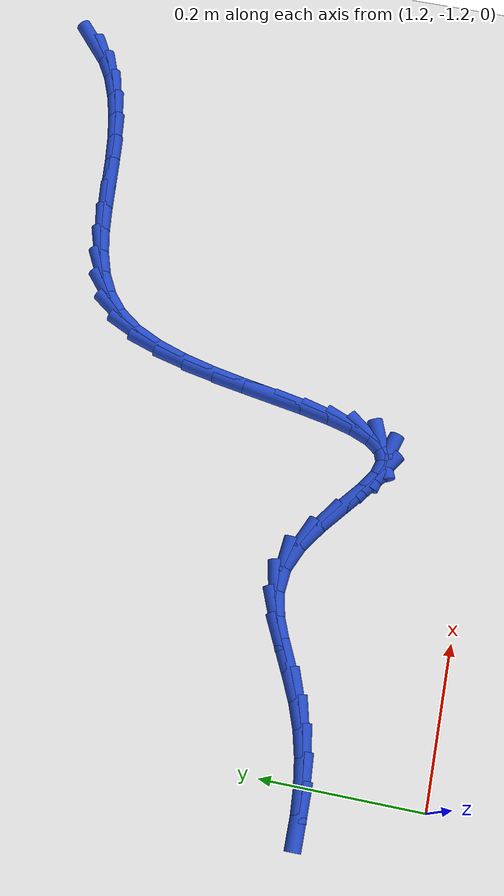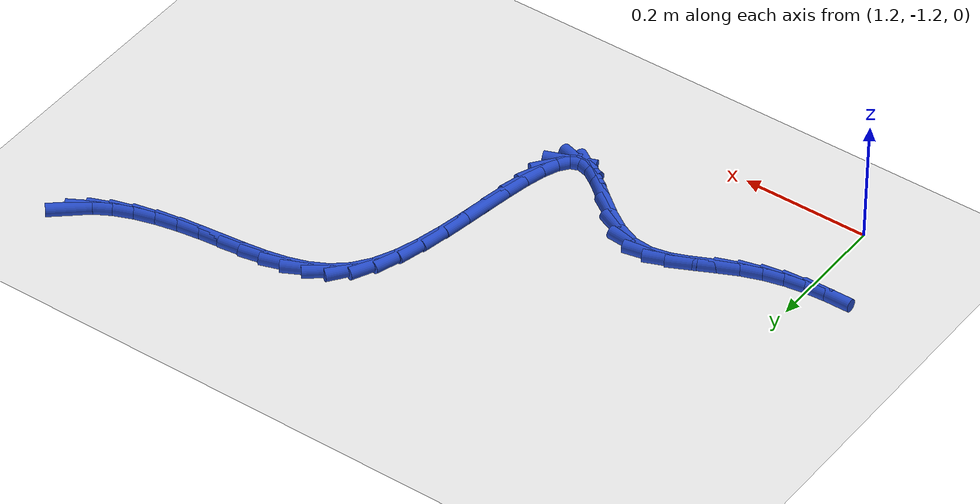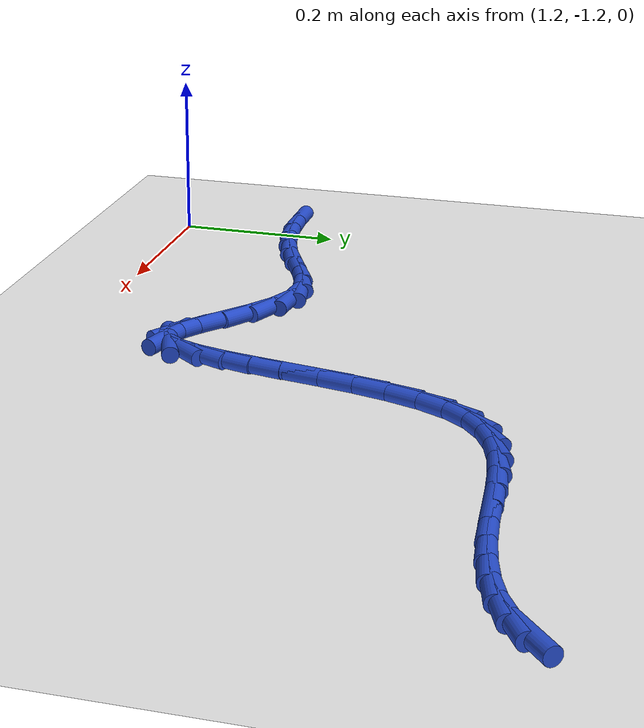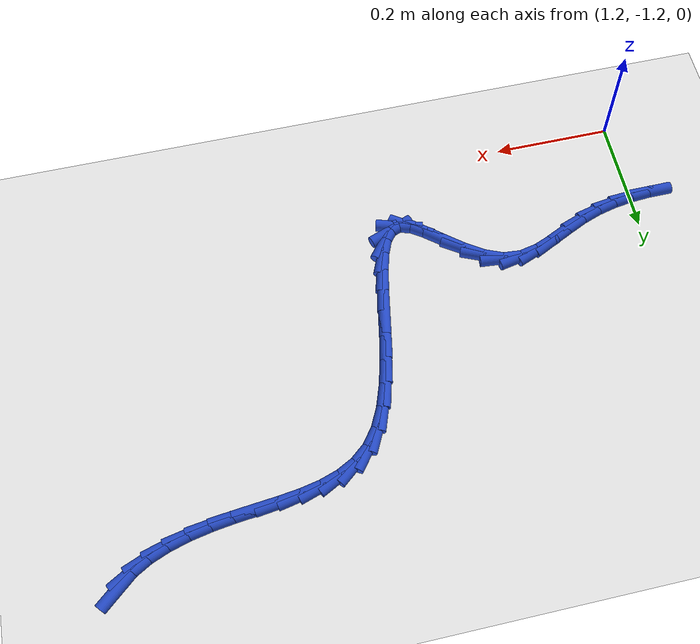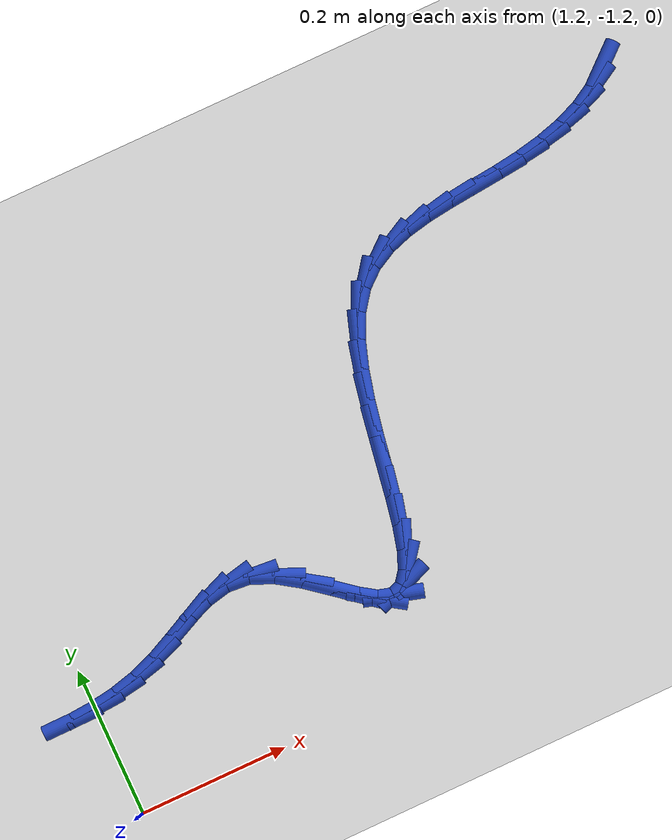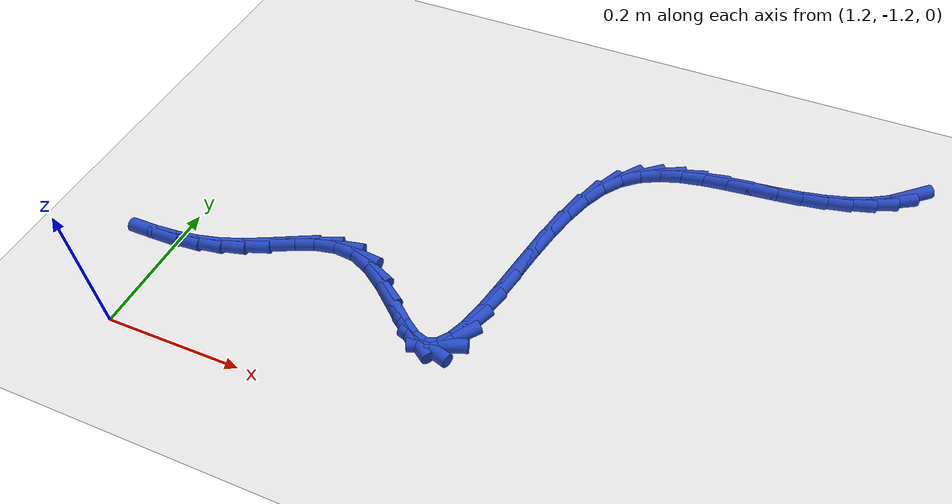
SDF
<sdf version="1.6">
 <world name="default">
  <model name="ground_plane">
   <static>1</static>
   <link name="link">
    <collision name="collision">
     <geometry><plane><normal>0 0 1</normal><size>100 100</size></plane></geometry>
     <surface><friction><ode><mu>100</mu><mu2>50</mu2></ode></friction></surface>
    </collision>
    <visual name="visual">
     <cast_shadows>0</cast_shadows>
     <geometry><plane><normal>0 0 1</normal><size>100 100</size></plane></geometry>
     <material>
      <script><uri>file://media/materials/scripts/gazebo.material</uri><name>Gazebo/WhiteGlow</name></script>
     </material>
    </visual>
   </link>
  </model>
  <model name="line">
   <link name="link_142">
    <pose>2.1393833070610757 -0.5779118455845336 0.01 0 1.57 0.7126438618117878</pose>
    <collision name="collision">
     <geometry><cylinder><radius>0.01</radius><length>0.08</length></cylinder></geometry>
    </collision>
    <visual name="visual">
     <material>
      <script><name>Gazebo/Blue</name><uri>file://media/materials/scripts/gazebo.material</uri></script>
     </material>
     <geometry><cylinder><radius>0.01</radius><length>0.08</length></cylinder></geometry>
    </visual>
   </link>
   <link name="link_143">
    <pose>2.118234941703511 -0.5961869150531836 0.01 0 1.57 0.5195855220535504</pose>
    <collision name="collision">
     <geometry><cylinder><radius>0.01</radius><length>0.08</length></cylinder></geometry>
    </collision>
    <visual name="visual">
     <material>
      <script><name>Gazebo/Blue</name><uri>file://media/materials/scripts/gazebo.material</uri></script>
     </material>
     <geometry><cylinder><radius>0.01</radius><length>0.08</length></cylinder></geometry>
    </visual>
   </link>
   <link name="link_144">
    <pose>2.0922200737883294 -0.6110677214231778 0.01 0 1.57 0.37708435574862165</pose>
    <collision name="collision">
     <geometry><cylinder><radius>0.01</radius><length>0.08</length></cylinder></geometry>
    </collision>
    <visual name="visual">
     <material>
      <script><name>Gazebo/Blue</name><uri>file://media/materials/scripts/gazebo.material</uri></script>
     </material>
     <geometry><cylinder><radius>0.01</radius><length>0.08</length></cylinder></geometry>
    </visual>
   </link>
   <link name="link_145">
    <pose>2.0623150887589996 -0.6229111680635481 0.01 0 1.57 0.2724864923428896</pose>
    <collision name="collision">
     <geometry><cylinder><radius>0.01</radius><length>0.08</length></cylinder></geometry>
    </collision>
    <visual name="visual">
     <material>
      <script><name>Gazebo/Blue</name><uri>file://media/materials/scripts/gazebo.material</uri></script>
     </material>
     <geometry><cylinder><radius>0.01</radius><length>0.08</length></cylinder></geometry>
    </visual>
   </link>
   <link name="link_146">
    <pose>2.0295068697442034 -0.6320789960708374 0.01 0 1.57 0.19487547662904103</pose>
    <collision name="collision">
     <geometry><cylinder><radius>0.01</radius><length>0.08</length></cylinder></geometry>
    </collision>
    <visual name="visual">
     <material>
      <script><name>Gazebo/Blue</name><uri>file://media/materials/scripts/gazebo.material</uri></script>
     </material>
     <geometry><cylinder><radius>0.01</radius><length>0.08</length></cylinder></geometry>
    </visual>
   </link>
   <link name="link_147">
    <pose>1.9947822998726255 -0.6389329465415888 0.01 0 1.57 0.13674925504653326</pose>
    <collision name="collision">
     <geometry><cylinder><radius>0.01</radius><length>0.08</length></cylinder></geometry>
    </collision>
    <visual name="visual">
     <material>
      <script><name>Gazebo/Blue</name><uri>file://media/materials/scripts/gazebo.material</uri></script>
     </material>
     <geometry><cylinder><radius>0.01</radius><length>0.08</length></cylinder></geometry>
    </visual>
   </link>
   <link name="link_148">
    <pose>1.9591258731783072 -0.6438395596698279 0.01 0 1.57 0.1008581613891665</pose>
    <collision name="collision">
     <geometry><cylinder><radius>0.01</radius><length>0.08</length></cylinder></geometry>
    </collision>
    <visual name="visual">
     <material>
      <script><name>Gazebo/Blue</name><uri>file://media/materials/scripts/gazebo.material</uri></script>
     </material>
     <geometry><cylinder><radius>0.01</radius><length>0.08</length></cylinder></geometry>
    </visual>
   </link>
   <link name="link_149">
    <pose>1.9233766916390032 -0.647457432162707 0.01 0 1.57 0.09741581158539026</pose>
    <collision name="collision">
     <geometry><cylinder><radius>0.01</radius><length>0.08</length></cylinder></geometry>
    </collision>
    <visual name="visual">
     <material>
      <script><name>Gazebo/Blue</name><uri>file://media/materials/scripts/gazebo.material</uri></script>
     </material>
     <geometry><cylinder><radius>0.01</radius><length>0.08</length></cylinder></geometry>
    </visual>
   </link>
   <link name="link_150">
    <pose>1.8881473149354333 -0.6509002279094512 0.01 0 1.57 0.1288612078966156</pose>
    <collision name="collision">
     <geometry><cylinder><radius>0.01</radius><length>0.08</length></cylinder></geometry>
    </collision>
    <visual name="visual">
     <material>
      <script><name>Gazebo/Blue</name><uri>file://media/materials/scripts/gazebo.material</uri></script>
     </material>
     <geometry><cylinder><radius>0.01</radius><length>0.08</length></cylinder></geometry>
    </visual>
   </link>
   <link name="link_151">
    <pose>1.8540306761245533 -0.6553210358094749 0.01 0 1.57 0.19946295281809032</pose>
    <collision name="collision">
     <geometry><cylinder><radius>0.01</radius><length>0.08</length></cylinder></geometry>
    </collision>
    <visual name="visual">
     <material>
      <script><name>Gazebo/Blue</name><uri>file://media/materials/scripts/gazebo.material</uri></script>
     </material>
     <geometry><cylinder><radius>0.01</radius><length>0.08</length></cylinder></geometry>
    </visual>
   </link>
   <link name="link_152">
    <pose>1.8216197082633203 -0.6618729447621939 0.01 0 1.57 0.3157203998667817</pose>
    <collision name="collision">
     <geometry><cylinder><radius>0.01</radius><length>0.08</length></cylinder></geometry>
    </collision>
    <visual name="visual">
     <material>
      <script><name>Gazebo/Blue</name><uri>file://media/materials/scripts/gazebo.material</uri></script>
     </material>
     <geometry><cylinder><radius>0.01</radius><length>0.08</length></cylinder></geometry>
    </visual>
   </link>
   <link name="link_153">
    <pose>1.79150734440869 -0.6717090436670229 0.01 0 1.57 0.4829412652534345</pose>
    <collision name="collision">
     <geometry><cylinder><radius>0.01</radius><length>0.08</length></cylinder></geometry>
    </collision>
    <visual name="visual">
     <material>
      <script><name>Gazebo/Blue</name><uri>file://media/materials/scripts/gazebo.material</uri></script>
     </material>
     <geometry><cylinder><radius>0.01</radius><length>0.08</length></cylinder></geometry>
    </visual>
   </link>
   <link name="link_154">
    <pose>1.764286517617619 -0.6859824214233774 0.01 0 1.57 0.6968094909851996</pose>
    <collision name="collision">
     <geometry><cylinder><radius>0.01</radius><length>0.08</length></cylinder></geometry>
    </collision>
    <visual name="visual">
     <material>
      <script><name>Gazebo/Blue</name><uri>file://media/materials/scripts/gazebo.material</uri></script>
     </material>
     <geometry><cylinder><radius>0.01</radius><length>0.08</length></cylinder></geometry>
    </visual>
   </link>
   <link name="link_155">
    <pose>1.7405501609470622 -0.705846166930673 0.01 0 1.57 0.9322815368508299</pose>
    <collision name="collision">
     <geometry><cylinder><radius>0.01</radius><length>0.08</length></cylinder></geometry>
    </collision>
    <visual name="visual">
     <material>
      <script><name>Gazebo/Blue</name><uri>file://media/materials/scripts/gazebo.material</uri></script>
     </material>
     <geometry><cylinder><radius>0.01</radius><length>0.08</length></cylinder></geometry>
    </visual>
   </link>
   <link name="link_156">
    <pose>1.7208564577376457 -0.7323790410631578 0.01 0 1.57 1.123806746687828</pose>
    <collision name="collision">
     <geometry><cylinder><radius>0.01</radius><length>0.08</length></cylinder></geometry>
    </collision>
    <visual name="visual">
     <material>
      <script><name>Gazebo/Blue</name><uri>file://media/materials/scripts/gazebo.material</uri></script>
     </material>
     <geometry><cylinder><radius>0.01</radius><length>0.08</length></cylinder></geometry>
    </visual>
   </link>
   <link name="link_157">
    <pose>1.7051021916063989 -0.7652451014833919 0.01 0 1.57 1.2495457994114914</pose>
    <collision name="collision">
     <geometry><cylinder><radius>0.01</radius><length>0.08</length></cylinder></geometry>
    </collision>
    <visual name="visual">
     <material>
      <script><name>Gazebo/Blue</name><uri>file://media/materials/scripts/gazebo.material</uri></script>
     </material>
     <geometry><cylinder><radius>0.01</radius><length>0.08</length></cylinder></geometry>
    </visual>
   </link>
   <link name="link_158">
    <pose>1.6925913180070784 -0.8028403740168438 0.01 0 1.57 1.3300888850163497</pose>
    <collision name="collision">
     <geometry><cylinder><radius>0.01</radius><length>0.08</length></cylinder></geometry>
    </collision>
    <visual name="visual">
     <material>
      <script><name>Gazebo/Blue</name><uri>file://media/materials/scripts/gazebo.material</uri></script>
     </material>
     <geometry><cylinder><radius>0.01</radius><length>0.08</length></cylinder></geometry>
    </visual>
   </link>
   <link name="link_159">
    <pose>1.6826068085141803 -0.8435160009483239 0.01 0 1.57 1.3790303087564886</pose>
    <collision name="collision">
     <geometry><cylinder><radius>0.01</radius><length>0.08</length></cylinder></geometry>
    </collision>
    <visual name="visual">
     <material>
      <script><name>Gazebo/Blue</name><uri>file://media/materials/scripts/gazebo.material</uri></script>
     </material>
     <geometry><cylinder><radius>0.01</radius><length>0.08</length></cylinder></geometry>
    </visual>
   </link>
   <link name="link_160">
    <pose>1.6744316347022012 -0.8856231245626425 0.01 0 1.57 1.4032970873143298</pose>
    <collision name="collision">
     <geometry><cylinder><radius>0.01</radius><length>0.08</length></cylinder></geometry>
    </collision>
    <visual name="visual">
     <material>
      <script><name>Gazebo/Blue</name><uri>file://media/materials/scripts/gazebo.material</uri></script>
     </material>
     <geometry><cylinder><radius>0.01</radius><length>0.08</length></cylinder></geometry>
    </visual>
   </link>
   <link name="link_161">
    <pose>1.6673487681456352 -0.9275128871446094 0.01 0 1.57 1.4047483846479694</pose>
    <collision name="collision">
     <geometry><cylinder><radius>0.01</radius><length>0.08</length></cylinder></geometry>
    </collision>
    <visual name="visual">
     <material>
      <script><name>Gazebo/Blue</name><uri>file://media/materials/scripts/gazebo.material</uri></script>
     </material>
     <geometry><cylinder><radius>0.01</radius><length>0.08</length></cylinder></geometry>
    </visual>
   </link>
   <link name="link_162">
    <pose>1.660641180418979 -0.9675364309790363 0.01 0 1.57 1.3800559227544178</pose>
    <collision name="collision">
     <geometry><cylinder><radius>0.01</radius><length>0.08</length></cylinder></geometry>
    </collision>
    <visual name="visual">
     <material>
      <script><name>Gazebo/Blue</name><uri>file://media/materials/scripts/gazebo.material</uri></script>
     </material>
     <geometry><cylinder><radius>0.01</radius><length>0.08</length></cylinder></geometry>
    </visual>
   </link>
   <link name="link_163">
    <pose>1.653591843096729 -1.0040448983507315 0.01 0 1.57 1.3176677298163717</pose>
    <collision name="collision">
     <geometry><cylinder><radius>0.01</radius><length>0.08</length></cylinder></geometry>
    </collision>
    <visual name="visual">
     <material>
      <script><name>Gazebo/Blue</name><uri>file://media/materials/scripts/gazebo.material</uri></script>
     </material>
     <geometry><cylinder><radius>0.01</radius><length>0.08</length></cylinder></geometry>
    </visual>
   </link>
   <link name="link_164">
    <pose>1.6454837277533794 -1.0353894315445058 0.01 0 1.57 1.1877895338116915</pose>
    <collision name="collision">
     <geometry><cylinder><radius>0.01</radius><length>0.08</length></cylinder></geometry>
    </collision>
    <visual name="visual">
     <material>
      <script><name>Gazebo/Blue</name><uri>file://media/materials/scripts/gazebo.material</uri></script>
     </material>
     <geometry><cylinder><radius>0.01</radius><length>0.08</length></cylinder></geometry>
    </visual>
   </link>
   <link name="link_165">
    <pose>1.635599805963427 -1.0599211728451698 0.01 0 1.57 0.9145087792027232</pose>
    <collision name="collision">
     <geometry><cylinder><radius>0.01</radius><length>0.08</length></cylinder></geometry>
    </collision>
    <visual name="visual">
     <material>
      <script><name>Gazebo/Blue</name><uri>file://media/materials/scripts/gazebo.material</uri></script>
     </material>
     <geometry><cylinder><radius>0.01</radius><length>0.08</length></cylinder></geometry>
    </visual>
   </link>
   <link name="link_166">
    <pose>1.6232230493013677 -1.0759912645375338 0.01 0 1.57 0.3652011354519394</pose>
    <collision name="collision">
     <geometry><cylinder><radius>0.01</radius><length>0.08</length></cylinder></geometry>
    </collision>
    <visual name="visual">
     <material>
      <script><name>Gazebo/Blue</name><uri>file://media/materials/scripts/gazebo.material</uri></script>
     </material>
     <geometry><cylinder><radius>0.01</radius><length>0.08</length></cylinder></geometry>
    </visual>
   </link>
   <link name="link_167">
    <pose>1.6076364293416963 -1.0819508489064078 0.01 0 1.57 -0.2815639588379737</pose>
    <collision name="collision">
     <geometry><cylinder><radius>0.01</radius><length>0.08</length></cylinder></geometry>
    </collision>
    <visual name="visual">
     <material>
      <script><name>Gazebo/Blue</name><uri>file://media/materials/scripts/gazebo.material</uri></script>
     </material>
     <geometry><cylinder><radius>0.01</radius><length>0.08</length></cylinder></geometry>
    </visual>
   </link>
   <link name="link_168">
    <pose>1.5881651866301338 -1.0763188237361245 0.01 0 1.57 -0.5926200820188073</pose>
    <collision name="collision">
     <geometry><cylinder><radius>0.01</radius><length>0.08</length></cylinder></geometry>
    </collision>
    <visual name="visual">
     <material>
      <script><name>Gazebo/Blue</name><uri>file://media/materials/scripts/gazebo.material</uri></script>
     </material>
     <geometry><cylinder><radius>0.01</radius><length>0.08</length></cylinder></geometry>
    </visual>
   </link>
   <link name="link_169">
    <pose>1.5649003392674874 -1.0606532759030782 0.01 0 1.57 -0.685230244939756</pose>
    <collision name="collision">
     <geometry><cylinder><radius>0.01</radius><length>0.08</length></cylinder></geometry>
    </collision>
    <visual name="visual">
     <material>
      <script><name>Gazebo/Blue</name><uri>file://media/materials/scripts/gazebo.material</uri></script>
     </material>
     <geometry><cylinder><radius>0.01</radius><length>0.08</length></cylinder></geometry>
    </visual>
   </link>
   <link name="link_170">
    <pose>1.5385990150884545 -1.0391559234842638 0.01 0 1.57 -0.6788377595008405</pose>
    <collision name="collision">
     <geometry><cylinder><radius>0.01</radius><length>0.08</length></cylinder></geometry>
    </collision>
    <visual name="visual">
     <material>
      <script><name>Gazebo/Blue</name><uri>file://media/materials/scripts/gazebo.material</uri></script>
     </material>
     <geometry><cylinder><radius>0.01</radius><length>0.08</length></cylinder></geometry>
    </visual>
   </link>
   <link name="link_171">
    <pose>1.510040555763179 -1.016116645989364 0.01 0 1.57 -0.5941350155244172</pose>
    <collision name="collision">
     <geometry><cylinder><radius>0.01</radius><length>0.08</length></cylinder></geometry>
    </collision>
    <visual name="visual">
     <material>
      <script><name>Gazebo/Blue</name><uri>file://media/materials/scripts/gazebo.material</uri></script>
     </material>
     <geometry><cylinder><radius>0.01</radius><length>0.08</length></cylinder></geometry>
    </visual>
   </link>
   <link name="link_172">
    <pose>1.4800043029618026 -0.9958253229280608 0.01 0 1.57 -0.40712913993919275</pose>
    <collision name="collision">
     <geometry><cylinder><radius>0.01</radius><length>0.08</length></cylinder></geometry>
    </collision>
    <visual name="visual">
     <material>
      <script><name>Gazebo/Blue</name><uri>file://media/materials/scripts/gazebo.material</uri></script>
     </material>
     <geometry><cylinder><radius>0.01</radius><length>0.08</length></cylinder></geometry>
    </visual>
   </link>
   <link name="link_173">
    <pose>1.4492695983544681 -0.9825718338100371 0.01 0 1.57 -0.08858421991796606</pose>
    <collision name="collision">
     <geometry><cylinder><radius>0.01</radius><length>0.08</length></cylinder></geometry>
    </collision>
    <visual name="visual">
     <material>
      <script><name>Gazebo/Blue</name><uri>file://media/materials/scripts/gazebo.material</uri></script>
     </material>
     <geometry><cylinder><radius>0.01</radius><length>0.08</length></cylinder></geometry>
    </visual>
   </link>
   <link name="link_174">
    <pose>1.4185198231703644 -0.979840741446103 0.01 0 1.57 0.20577400372296184</pose>
    <collision name="collision">
     <geometry><cylinder><radius>0.01</radius><length>0.08</length></cylinder></geometry>
    </collision>
    <visual name="visual">
     <material>
      <script><name>Gazebo/Blue</name><uri>file://media/materials/scripts/gazebo.material</uri></script>
     </material>
     <geometry><cylinder><radius>0.01</radius><length>0.08</length></cylinder></geometry>
    </visual>
   </link>
   <link name="link_175">
    <pose>1.387857371812705 -0.9862408662251215 0.01 0 1.57 0.3815904295361606</pose>
    <collision name="collision">
     <geometry><cylinder><radius>0.01</radius><length>0.08</length></cylinder></geometry>
    </collision>
    <visual name="visual">
     <material>
      <script><name>Gazebo/Blue</name><uri>file://media/materials/scripts/gazebo.material</uri></script>
     </material>
     <geometry><cylinder><radius>0.01</radius><length>0.08</length></cylinder></geometry>
    </visual>
   </link>
   <link name="link_176">
    <pose>1.357167120317942 -0.9985555765963213 0.01 0 1.57 0.45302388722121895</pose>
    <collision name="collision">
     <geometry><cylinder><radius>0.01</radius><length>0.08</length></cylinder></geometry>
    </collision>
    <visual name="visual">
     <material>
      <script><name>Gazebo/Blue</name><uri>file://media/materials/scripts/gazebo.material</uri></script>
     </material>
     <geometry><cylinder><radius>0.01</radius><length>0.08</length></cylinder></geometry>
    </visual>
   </link>
   <link name="link_177">
    <pose>1.326333563795598 -1.0135650442039508 0.01 0 1.57 0.4359567941784025</pose>
    <collision name="collision">
     <geometry><cylinder><radius>0.01</radius><length>0.08</length></cylinder></geometry>
    </collision>
    <visual name="visual">
     <material>
      <script><name>Gazebo/Blue</name><uri>file://media/materials/scripts/gazebo.material</uri></script>
     </material>
     <geometry><cylinder><radius>0.01</radius><length>0.08</length></cylinder></geometry>
    </visual>
   </link>
   <link name="link_178">
    <pose>1.295241197355198 -1.0280494406922556 0.01 0 1.57 0.3444533275424192</pose>
    <collision name="collision">
     <geometry><cylinder><radius>0.01</radius><length>0.08</length></cylinder></geometry>
    </collision>
    <visual name="visual">
     <material>
      <script><name>Gazebo/Blue</name><uri>file://media/materials/scripts/gazebo.material</uri></script>
     </material>
     <geometry><cylinder><radius>0.01</radius><length>0.08</length></cylinder></geometry>
    </visual>
   </link>
   <link name="link_179">
    <pose>1.2637995157415864 -1.0393293133895616 0.01 0 1.57 0.24177346184072546</pose>
    <collision name="collision">
     <geometry><cylinder><radius>0.01</radius><length>0.08</length></cylinder></geometry>
    </collision>
    <visual name="visual">
     <material>
      <script><name>Gazebo/Blue</name><uri>file://media/materials/scripts/gazebo.material</uri></script>
     </material>
     <geometry><cylinder><radius>0.01</radius><length>0.08</length></cylinder></geometry>
    </visual>
   </link>
   <link name="link_180">
    <pose>1.2320308121317263 -1.0471633863869536 0.01 0 1.57 0.1497473879245121</pose>
    <collision name="collision">
     <geometry><cylinder><radius>0.01</radius><length>0.08</length></cylinder></geometry>
    </collision>
    <visual name="visual">
     <material>
      <script><name>Gazebo/Blue</name><uri>file://media/materials/scripts/gazebo.material</uri></script>
     </material>
     <geometry><cylinder><radius>0.01</radius><length>0.08</length></cylinder></geometry>
    </visual>
   </link>
   <link name="link_181">
    <pose>1.1999891785607624 -1.0519977269916458 0.01 0 1.57 0.07057946205751549</pose>
    <collision name="collision">
     <geometry><cylinder><radius>0.01</radius><length>0.08</length></cylinder></geometry>
    </collision>
    <visual name="visual">
     <material>
      <script><name>Gazebo/Blue</name><uri>file://media/materials/scripts/gazebo.material</uri></script>
     </material>
     <geometry><cylinder><radius>0.01</radius><length>0.08</length></cylinder></geometry>
    </visual>
   </link>
   <link name="link_182">
    <pose>1.1677287088880735 -1.054278441942268 0.01 0 1.57 0.00534134945781943</pose>
    <collision name="collision">
     <geometry><cylinder><radius>0.01</radius><length>0.08</length></cylinder></geometry>
    </collision>
    <visual name="visual">
     <material>
      <script><name>Gazebo/Blue</name><uri>file://media/materials/scripts/gazebo.material</uri></script>
     </material>
     <geometry><cylinder><radius>0.01</radius><length>0.08</length></cylinder></geometry>
    </visual>
   </link>
  </model>
 </world>
</sdf>
